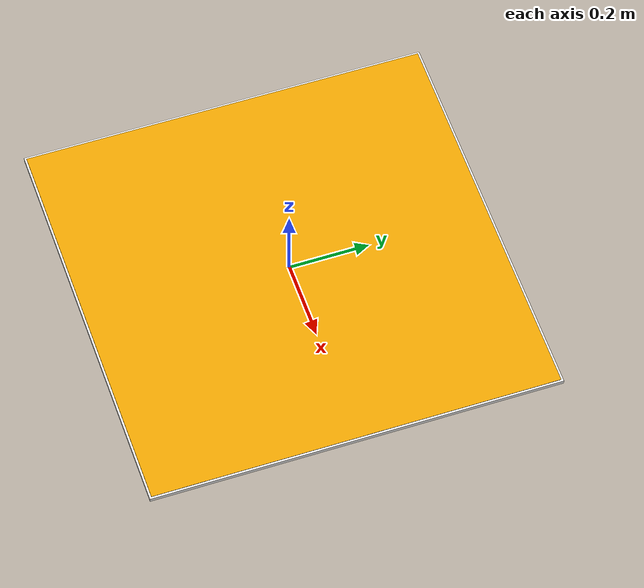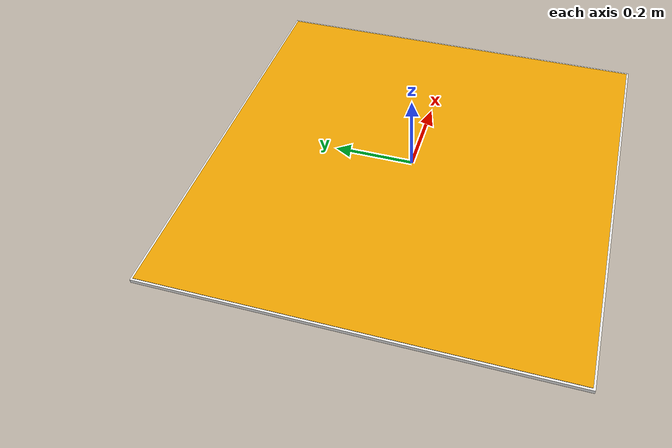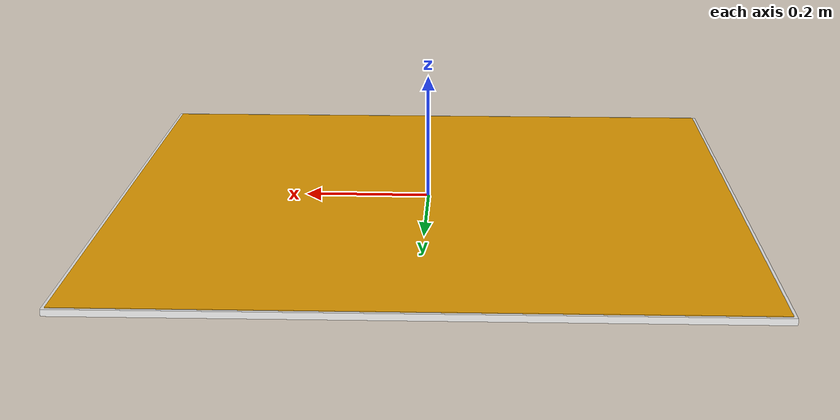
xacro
<?xml version="1.0"?>
<robot name="smocap_chessboard" xmlns:xacro="http://www.ros.org/wiki/xacro">

  <xacro:arg name="root_link" default="irm_link"/>
  <xacro:arg name="mesh" default="unused"/>
  <xacro:arg name="texture" default="ChessBoard01"/>

  <!-- Import marker macros -->
  <xacro:include filename="$(find smocap)/urdf/chessboard.urdf.xacro" />
  <!-- Instanciate marker -->
  <xacro:chessboard root_link="$(arg root_link)" texture="$(arg texture)" static="false"/>

  <gazebo>
    <plugin name="hand_of_god" filename="libgazebo_ros_hand_of_god.so">
      <linkName>$(arg root_link)</linkName>
      <kl>0.4</kl>
      <ka>0.01</ka>
      <frameId>$(arg root_link)</frameId>
    </plugin>
  </gazebo>

  <gazebo>
    <plugin name="ground_truth" filename="libgazebo_ros_p3d.so">
      <frameName>world</frameName>
      <bodyName>$(arg root_link)</bodyName>
      <topicName>smocap/$(arg root_link)_truth</topicName>
      <updateRate>30.0</updateRate>
    </plugin>
  </gazebo>

</robot>

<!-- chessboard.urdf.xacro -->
<robot name="smocap_chessboard" xmlns:xacro="http://www.ros.org/wiki/xacro">

  <xacro:property name="chsbrd_dx"   value="1.0" />
  <xacro:property name="chsbrd_dy"   value="1.0" />
  <xacro:property name="chsbrd_dz"   value="0.01" />
  <xacro:property name="chsbrd_mass" value="0.01" />
  <xacro:property name="chsbrd_z"    value="${-chsbrd_dz/2.}" />  <!-- place origin on face -->

  <!-- Include inertia macros -->
  <xacro:include filename="$(find smocap)/urdf/inertias.urdf.xacro" />

  <xacro:macro name="chessboard" params="root_link texture static">
    <link name="${root_link}">
      <visual>
	<origin xyz="0 0 ${chsbrd_z}" rpy="0 0 0"/>
	<geometry>
          <box size="${chsbrd_dx} ${chsbrd_dy} ${chsbrd_dz}"/>
	</geometry>
      </visual>
      <collision>
	<origin xyz="0 0 ${chsbrd_z}" rpy="0 0 0"/>
	<geometry>
          <box size="${chsbrd_dx} ${chsbrd_dy} ${chsbrd_dz}"/>
	</geometry>
      </collision>
      <xacro:inertial_cuboid_with_pose mass="${chsbrd_mass}" x_length="${chsbrd_dx}" y_length="${chsbrd_dy}" z_length="${chsbrd_dz}">
	<origin xyz="0 0 ${chsbrd_z}" rpy="0 0 0"/>
      </xacro:inertial_cuboid_with_pose>
    </link>

    <xacro:property name="bgdx" value="${chsbrd_dx*1.01}"/>
    <xacro:property name="bgdy" value="${chsbrd_dy*1.01}"/>
    <xacro:property name="bgdz" value="${chsbrd_dz*1.00}"/>
    <xacro:property name="bgz"  value="${chsbrd_z-chsbrd_dz*0.1}" />  <!-- move background 10 percent behind chessboard -->

    <link name="background_link">
      <visual>
	<origin xyz="0 0 ${bgz}" rpy="0 0 0"/>
	<geometry>
          <box size="${bgdx} ${bgdy} ${bgdz}"/>
	</geometry>
      </visual>
      <collision>
	<origin xyz="0 0 ${bgz}" rpy="0 0 0"/>
	<geometry>
          <box size="${bgdx} ${bgdy} ${bgdz}"/>
	</geometry>
      </collision>
      <xacro:inertial_cuboid_with_pose mass="${chsbrd_mass}" x_length="${bgdx}" y_length="${bgdy}" z_length="${bgdz}">
	<origin xyz="0 0 ${bgz}" rpy="0 0 0"/>
      </xacro:inertial_cuboid_with_pose>
    </link>

    <joint name="fixed" type="fixed">
      <parent link="${root_link}"/>
      <child link="background_link"/>
    </joint>

    <gazebo reference="${root_link}">
      <material>${texture}</material>
    </gazebo>

    <gazebo reference="background_link">
      <material>Gazebo/White</material>
    </gazebo>

    <xacro:if value="${static}">
      <gazebo>
	<static>true</static>
      </gazebo>
    </xacro:if>
  </xacro:macro>

</robot>
